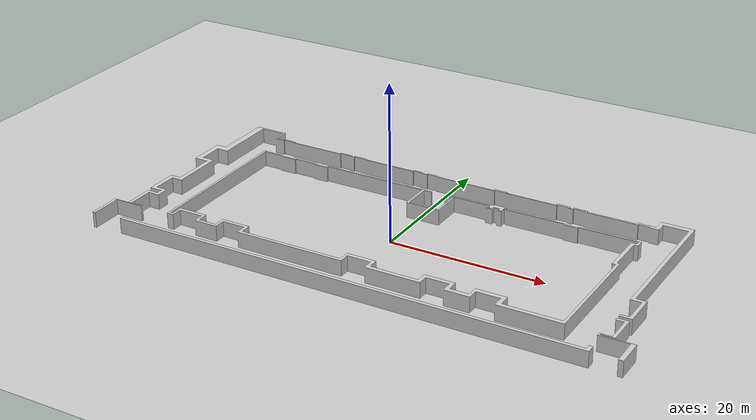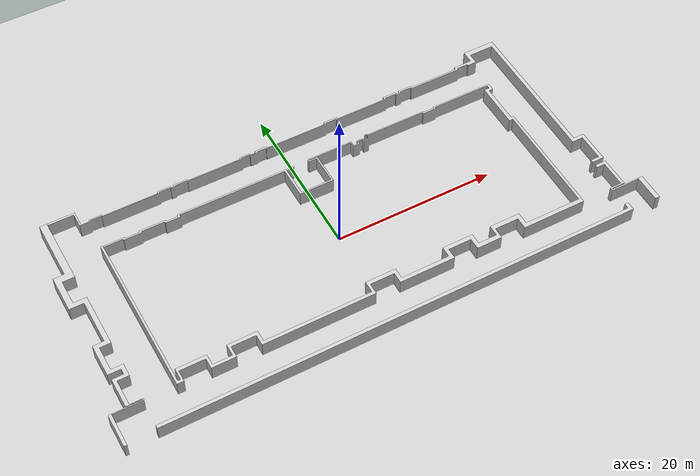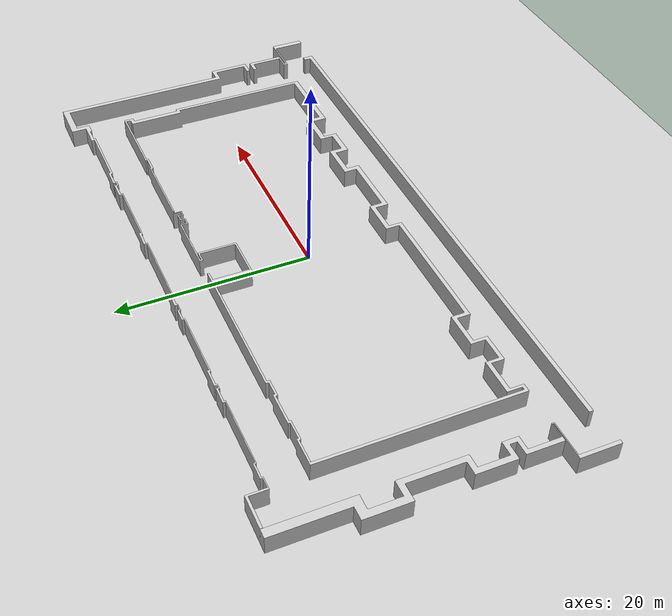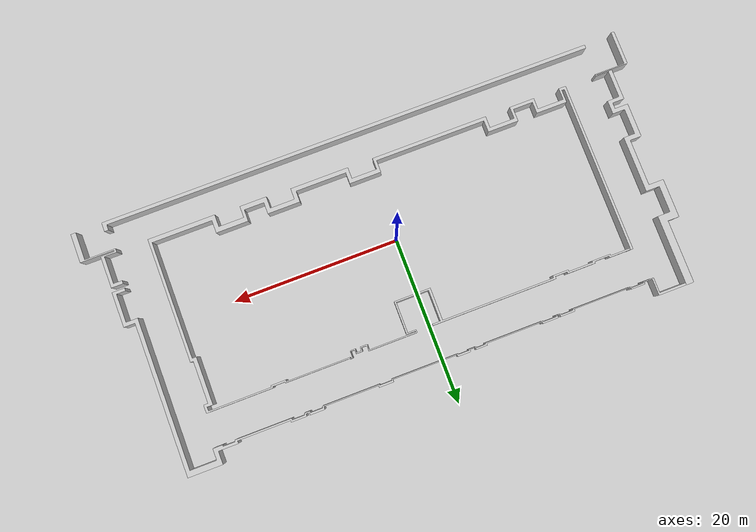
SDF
<?xml version="1.0" ?>
<sdf version="1.4">
  <world name="default">
    <!-- Gravity -->
    <physics type="ode">
      <!-- 1/6 of 9.80665 -->
      <gravity> 0 0 -9.80665</gravity>
    </physics>

    <!-- A global light source -->
    <include>
      <uri>model://sun</uri>
    </include>

    <include>
      <uri>model://ground_plane</uri>
    </include>

    <!-- A hightmap plane -->
    <include>
      <uri>model://hallway</uri>
    </include>
    <!-- Starry sky -->

    <physics name='default_physics' default='0' type='ode'>
      <ode>
        <solver>
          <type>quick</type>
          <iters>300</iters>
        </solver>
      </ode>
      <max_step_size>0.001</max_step_size>
      <real_time_factor>1</real_time_factor>
      <real_time_update_rate>1000</real_time_update_rate>
    </physics>

  </world>
</sdf>

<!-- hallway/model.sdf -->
<sdf version="1.5">
  <model name="hallway">
    <static>true</static>
    <link name="link">
      <collision name="collision">
        <surface>
          <friction>
          <ode>
            <mu>0.7</mu>
          </ode>
          </friction>
          <contact>
          <ode>
            <soft_cfm>1</soft_cfm>
            <kp>1000000</kp>
            <kd>1</kd>
            <max_vel>0.000001</max_vel>
            <min_depth>0.01</min_depth>
          </ode>
          </contact>
        </surface>

        <geometry>
          <mesh>
            <uri>model://hallway/hallway.dae</uri>
            <scale>1 1 1</scale>
          </mesh>
        </geometry>
      </collision>

      <visual name="visual">
        <geometry>
          <mesh>
            <uri>model://hallway/hallway.dae</uri>
            <scale>1 1 1</scale>
          </mesh>
        </geometry>
      </visual>

    </link>
  </model>
</sdf>
